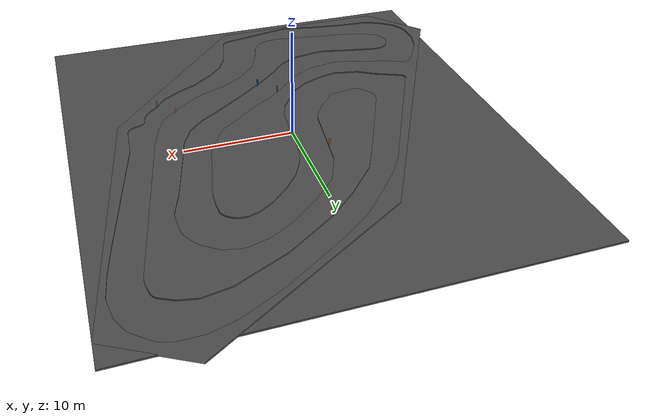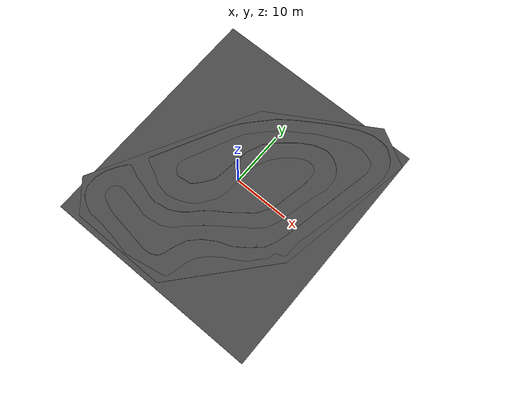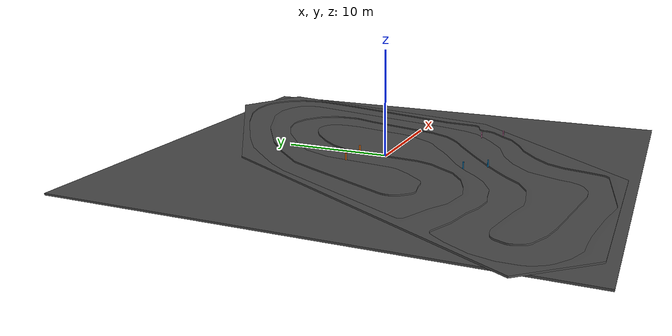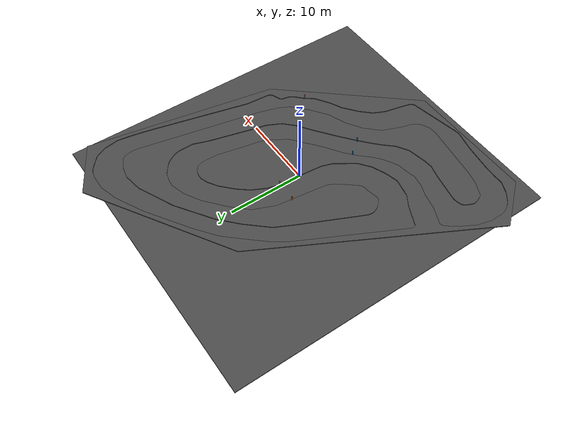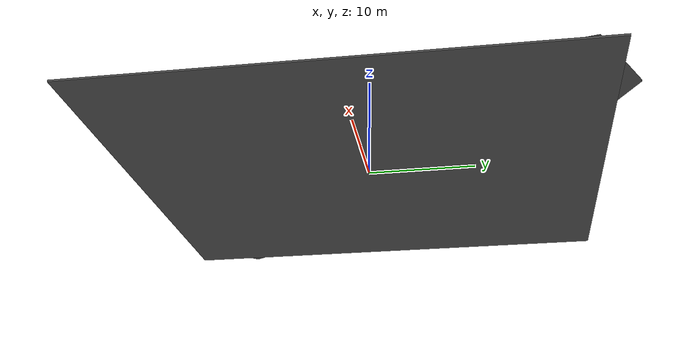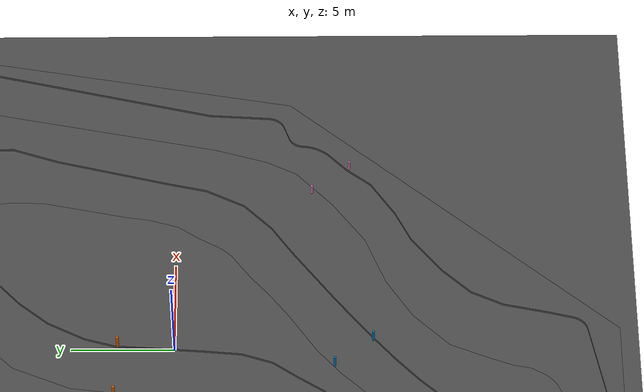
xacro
<?xml version="1.0"?>
<robot name="kartland" xmlns:xacro="http://ros.org/wiki/xacro">
    <xacro:property name="PI" value="3.1415926535897931"/>
    <xacro:property name="scale" value="0.4"/>
    <xacro:include filename="$(find race_tracks)/urdf/gate.urdf.xacro"/>

    <material name="road_colour">
        <color rgba="0.3 0.3 0.3 1"/>
    </material>

    <material name="barrier_colour">
        <color rgba="0.7 0.7 0.7 1"/>
    </material>

    <material name="off_track_colour">
        <color rgba="0.1 0.5 0.1 1"/>
    </material>

    <link name="world"/>

    <link name="track_base_link"/>
    <joint name="track_to_world_joint" type="fixed">
        <origin xyz="0 0 0" rpy="0 0 0" />
        <parent link="world" />"
        <child link="track_base_link" />"
    </joint>

    <link name="track_road_link">
        <inertial>
            <mass value="100"/>
            <origin xyz="0 0 0" rpy="0 0 0"/>
            <inertia  ixx="6.997767154121414" ixy="0" ixz="0" iyy="17.876069102859596" iyz="0" izz="18.49883625698101" />
        </inertial>
        <visual>
            <origin xyz="0 0 0" rpy="0 0 0"/>
            <geometry>
                <mesh filename="file://$(find race_tracks)/meshes/kartland_barrier.stl" scale="${scale} ${scale} ${scale}"/>
            </geometry>
            <material name="road_colour"/>
        </visual>
        <collision>
            <origin xyz="0 0 0" rpy="0 0 0"/>
            <geometry>
                <mesh filename="file://$(find race_tracks)/meshes/kartland_barrier_cubed.stl" scale="${scale} ${scale} ${scale}"/>
            </geometry>
        </collision>
    </link>

    <joint name="road_to_base_joint" type="fixed">
        <origin xyz="0 0 0" rpy="0 0 0" />
        <parent link="track_base_link" />"
        <child link="track_road_link" />"
    </joint>

    <link name="track_road_plane_link">
        <inertial>
            <mass value="100"/>
            <origin xyz="0 0 0" rpy="0 0 0"/>
            <inertia  ixx="6.997767154121414" ixy="0" ixz="0" iyy="17.876069102859596" iyz="0" izz="18.49883625698101" />
        </inertial>
        <visual>
            <origin xyz="0 0 0" rpy="0 0 0"/>
            <geometry>
                <mesh filename="file://$(find race_tracks)/meshes/kartland_road.dae" scale="${scale} ${scale} ${scale}"/>
            </geometry>
            <material name="road_colour"/>
        </visual>
        <collision>
            <origin xyz="0 0 ${-0.47*scale}" rpy="0 0 0"/>
            <geometry>
                <box size="${scale*100} ${scale*111} ${scale*0.25}"/>
            </geometry>
        </collision>
    </link>

    <joint name="road_plane_to_base_joint" type="fixed">
        <origin xyz="0 0 0" rpy="0 0 0" />
        <parent link="track_base_link" />"
        <child link="track_road_plane_link" />"
    </joint>

    <xacro:gate gate_prefix="gate_" name_suffix="_03" parent_link="track_road_link" scale="${scale}">
        <origin xyz="${-0.236048*scale} ${-21.73*scale} ${0.4257*scale}" rpy="0 0 ${-PI/1.4*scale}"/>
    </xacro:gate>

    <xacro:gate gate_prefix="gate_" name_suffix="_02" parent_link="track_road_link" scale="${1.2*scale}">
        <origin xyz="${-2.75*scale} ${7.1*scale} ${0.4257*scale}" rpy="0 0 ${-PI/30*scale}"/>
    </xacro:gate>

    <xacro:gate gate_prefix="gate_" name_suffix="_01" parent_link="track_road_link" scale="${scale}">
        <origin xyz="${25.7*scale} ${-19.1*scale} ${0.4257*scale}" rpy="0 0 ${-PI/1.4*scale}"/>
    </xacro:gate>

    <gazebo reference="track_road_plane_link">
            <mu1 value="2.0"/>
            <mu2 value="2.0"/>
            <kp  value="1e8" />
    </gazebo>

    <gazebo reference="track_road_link">
        <material>Gazebo/Black</material>
    </gazebo>

    <gazebo reference="track_barriers_link">
        <material>Gazebo/Gray</material>
    </gazebo>

    <gazebo reference="off_track_link">
        <material>Gazebo/Grass</material>
    </gazebo>

    <gazebo>
        <static>true</static>
    </gazebo>

</robot>

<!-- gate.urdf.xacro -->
<robot name="gate" xmlns:xacro="http://ros.org/wiki/xacro">
	<xacro:macro name="gate" params="name_suffix gate_prefix parent_link scale *joint_pose">
        <link name="${gate_prefix}gate_link${name_suffix}">
        <inertial>
            <mass value="100"/>
            <origin xyz="0 0 0" rpy="0 0 0"/>
            <inertia  ixx="6.997767154121414" ixy="0" ixz="0" iyy="17.876069102859596" iyz="0" izz="18.49883625698101" />
        </inertial>
			<visual>
                <origin xyz="0 0 0" rpy="0 0 0" />
				<geometry>
                    <mesh filename="file://$(find race_tracks)/meshes/gate.dae" scale="${scale} ${scale} ${scale}"/>
				</geometry>
			</visual>
            <collision>
                <origin xyz="0 0 0" rpy="0 0 0" />
                <geometry>
                    <mesh filename="file://$(find race_tracks)/meshes/gate.dae" scale="${scale} ${scale} ${scale}"/>
                </geometry>
            </collision>
		</link>

        <!-- This should have been a fixed joint, but gazebo merges all fixed joints into a single one, to save resources. We can't have that here. -->
        <joint name="${gate_prefix}gate${name_suffix}" type="revolute">
            <parent link="${parent_link}"/>
            <child link="${gate_prefix}gate_link${name_suffix}"/>
            <axis xyz="1 0 0" />
            <dynamics damping="10" friction="0" />
            <limit lower="0" upper="0" effort="1" velocity="1"/>
			<xacro:insert_block name="joint_pose"/>
        </joint>

	</xacro:macro>
</robot>
